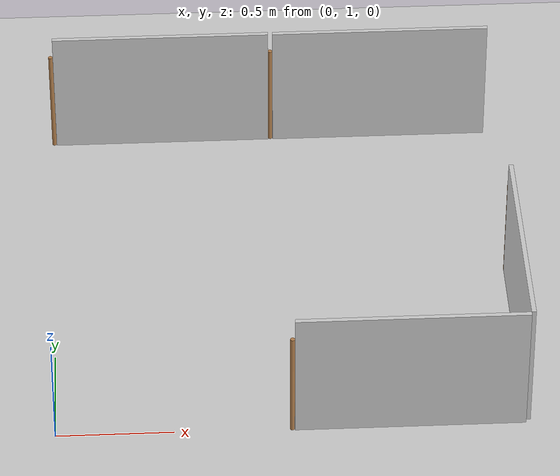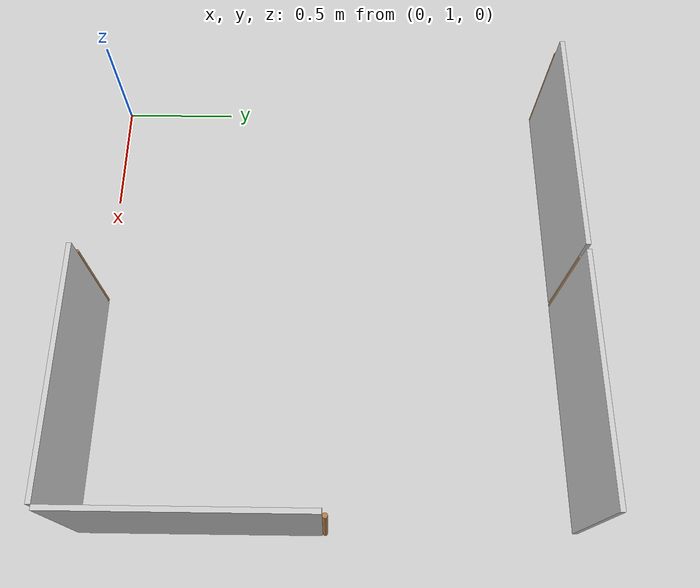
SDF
<sdf version="1.7">
 <world name="default">
  <model name="ground_plane">
   <static>true</static>
   <link name="link">
    <collision name="collision">
     <geometry><plane><normal>0 0 1</normal><size>1 1</size></plane></geometry>
    </collision>
    <visual name="visual">
     <geometry><plane><normal>0 0 1</normal><size>100 100</size></plane></geometry>
     <material>
      <ambient>0.8 0.8 0.8 1</ambient>
      <diffuse>0.8 0.8 0.8 1</diffuse>
      <specular>0.8 0.8 0.8 1</specular>
     </material>
    </visual>
    <inertial>
     <mass>1</mass>
     <inertia><ixx>1</ixx><ixy>0</ixy><ixz>0</ixz><iyy>1</iyy><iyz>0</iyz><izz>1</izz></inertia>
    </inertial>
   </link>
  </model>
  <model name="maze_1_6x5_clone_2_clone_clone_5_clone">
   <frame name="plywood_panel_0_0_b::__model__" attached_to="plywood_panel_0_0_b::main">
    <pose relative_to="__model__">0 0 0 0 -0 1.571</pose>
   </frame>
   <static>true</static>
   <link name="plywood_panel_0_0_b::main">
    <pose relative_to="plywood_panel_0_0_b::__model__">0 0 0 0 -0 0</pose>
    <collision name="collision">
     <pose>0 -0.5 0.3 -1.571 -0 -1.571</pose>
     <geometry><box><size>0.98 0.6 0.02</size></box></geometry>
    </collision>
    <visual name="visual">
     <pose>0.01 -0.01 0 3.14159 -1.57059 3.14159</pose>
     <geometry>
      <mesh>
       <scale>1 1 1</scale>
       <uri>/home/mayank/cognipilot/cranium/src/dream_world/models/plywood_panel/meshes/plywood.dae</uri>
      </mesh>
     </geometry>
    </visual>
   </link>
   <frame name="wooden_joint_0_0_b::__model__" attached_to="wooden_joint_0_0_b::link_0">
    <pose relative_to="__model__">0 0 0 0 -0 0</pose>
   </frame>
   <link name="wooden_joint_0_0_b::link_0">
    <pose relative_to="wooden_joint_0_0_b::__model__">0 0 0.25 0 -0 0</pose>
    <inertial>
     <mass>0.00215981</mass>
     <inertia>
      <ixx>0.00018028</ixx>
      <ixy>0</ixy>
      <ixz>0</ixz>
      <iyy>0.00018028</iyy>
      <iyz>0</iyz>
      <izz>5.8e-07</izz>
     </inertia>
    </inertial>
    <visual name="visual">
     <geometry><cylinder><radius>0.01</radius><length>0.5</length></cylinder></geometry>
     <material>
      <lighting>1</lighting>
      <script><uri>file://media/materials/scripts/gazebo.material</uri><name>Gazebo/Wood</name></script>
      <shader type="pixel"><normal_map>__default__</normal_map></shader>
      <ambient>0.3 0.3 0.3 1</ambient>
      <diffuse>0.7 0.7 0.7 1</diffuse>
      <specular>0.01 0.01 0.01 1</specular>
      <emissive>0 0 0 1</emissive>
     </material>
    </visual>
    <collision name="collision">
     <geometry><cylinder><radius>0.01</radius><length>0.5</length></cylinder></geometry>
     <surface>
      <friction>
       <ode><mu>1</mu><mu2>1</mu2><fdir1>0 0 0</fdir1><slip1>0</slip1><slip2>0</slip2></ode>
       <torsional>
        <coefficient>1</coefficient>
        <patch_radius>0</patch_radius>
        <surface_radius>0</surface_radius>
        <use_patch_radius>1</use_patch_radius>
        <ode><slip>0</slip></ode>
       </torsional>
      </friction>
      <bounce><restitution_coefficient>0</restitution_coefficient><threshold>1e+06</threshold></bounce>
      <contact>
       <collide_without_contact>0</collide_without_contact>
       <collide_without_contact_bitmask>1</collide_without_contact_bitmask>
       <collide_bitmask>1</collide_bitmask>
       <ode>
        <soft_cfm>0</soft_cfm>
        <soft_erp>0.2</soft_erp>
        <kp>1e+13</kp>
        <kd>1</kd>
        <max_vel>0.01</max_vel>
        <min_depth>0</min_depth>
       </ode>
       <bullet>
        <split_impulse>1</split_impulse>
        <split_impulse_penetration_threshold>-0.01</split_impulse_penetration_threshold>
        <soft_cfm>0</soft_cfm>
        <soft_erp>0.2</soft_erp>
        <kp>1e+13</kp>
        <kd>1</kd>
       </bullet>
      </contact>
     </surface>
    </collision>
   </link>
   <static>true</static>
   <pose>1 1 0 0 0 -4e-06</pose>
  </model>
  <model name="maze_1_6x5_clone_2_clone_clone_clone_2_clone_3">
   <frame name="plywood_panel_0_0_b::__model__" attached_to="plywood_panel_0_0_b::main">
    <pose relative_to="__model__">0 0 0 0 -0 1.571</pose>
   </frame>
   <static>true</static>
   <link name="plywood_panel_0_0_b::main">
    <pose relative_to="plywood_panel_0_0_b::__model__">0 0 0 0 -0 0</pose>
    <collision name="collision">
     <pose>0 -0.5 0.3 -1.571 -0 -1.571</pose>
     <geometry><box><size>0.98 0.6 0.02</size></box></geometry>
    </collision>
    <visual name="visual">
     <pose>0.01 -0.01 0 3.14159 -1.57059 3.14159</pose>
     <geometry>
      <mesh>
       <scale>1 1 1</scale>
       <uri>/home/mayank/cognipilot/cranium/src/dream_world/models/plywood_panel/meshes/plywood.dae</uri>
      </mesh>
     </geometry>
    </visual>
   </link>
   <frame name="wooden_joint_0_0_b::__model__" attached_to="wooden_joint_0_0_b::link_0">
    <pose relative_to="__model__">0 0 0 0 -0 0</pose>
   </frame>
   <link name="wooden_joint_0_0_b::link_0">
    <pose relative_to="wooden_joint_0_0_b::__model__">0 0 0.25 0 -0 0</pose>
    <inertial>
     <mass>0.00215981</mass>
     <inertia>
      <ixx>0.00018028</ixx>
      <ixy>0</ixy>
      <ixz>0</ixz>
      <iyy>0.00018028</iyy>
      <iyz>0</iyz>
      <izz>5.8e-07</izz>
     </inertia>
    </inertial>
    <visual name="visual">
     <geometry><cylinder><radius>0.01</radius><length>0.5</length></cylinder></geometry>
     <material>
      <lighting>1</lighting>
      <script><uri>file://media/materials/scripts/gazebo.material</uri><name>Gazebo/Wood</name></script>
      <shader type="pixel"><normal_map>__default__</normal_map></shader>
      <ambient>0.3 0.3 0.3 1</ambient>
      <diffuse>0.7 0.7 0.7 1</diffuse>
      <specular>0.01 0.01 0.01 1</specular>
      <emissive>0 0 0 1</emissive>
     </material>
    </visual>
    <collision name="collision">
     <geometry><cylinder><radius>0.01</radius><length>0.5</length></cylinder></geometry>
     <surface>
      <friction>
       <ode><mu>1</mu><mu2>1</mu2><fdir1>0 0 0</fdir1><slip1>0</slip1><slip2>0</slip2></ode>
       <torsional>
        <coefficient>1</coefficient>
        <patch_radius>0</patch_radius>
        <surface_radius>0</surface_radius>
        <use_patch_radius>1</use_patch_radius>
        <ode><slip>0</slip></ode>
       </torsional>
      </friction>
      <bounce><restitution_coefficient>0</restitution_coefficient><threshold>1e+06</threshold></bounce>
      <contact>
       <collide_without_contact>0</collide_without_contact>
       <collide_without_contact_bitmask>1</collide_without_contact_bitmask>
       <collide_bitmask>1</collide_bitmask>
       <ode>
        <soft_cfm>0</soft_cfm>
        <soft_erp>0.2</soft_erp>
        <kp>1e+13</kp>
        <kd>1</kd>
        <max_vel>0.01</max_vel>
        <min_depth>0</min_depth>
       </ode>
       <bullet>
        <split_impulse>1</split_impulse>
        <split_impulse_penetration_threshold>-0.01</split_impulse_penetration_threshold>
        <soft_cfm>0</soft_cfm>
        <soft_erp>0.2</soft_erp>
        <kp>1e+13</kp>
        <kd>1</kd>
       </bullet>
      </contact>
     </surface>
    </collision>
   </link>
   <static>true</static>
   <pose>0 3 0 0 0 -4e-06</pose>
  </model>
  <model name="maze_1_6x5_clone_2_clone_clone_clone_2_clone_4">
   <frame name="plywood_panel_0_0_b::__model__" attached_to="plywood_panel_0_0_b::main">
    <pose relative_to="__model__">0 0 0 0 -0 1.571</pose>
   </frame>
   <static>true</static>
   <link name="plywood_panel_0_0_b::main">
    <pose relative_to="plywood_panel_0_0_b::__model__">0 0 0 0 -0 0</pose>
    <collision name="collision">
     <pose>0 -0.5 0.3 -1.571 -0 -1.571</pose>
     <geometry><box><size>0.98 0.6 0.02</size></box></geometry>
    </collision>
    <visual name="visual">
     <pose>0.01 -0.01 0 3.14159 -1.57059 3.14159</pose>
     <geometry>
      <mesh>
       <scale>1 1 1</scale>
       <uri>/home/mayank/cognipilot/cranium/src/dream_world/models/plywood_panel/meshes/plywood.dae</uri>
      </mesh>
     </geometry>
    </visual>
   </link>
   <frame name="wooden_joint_0_0_b::__model__" attached_to="wooden_joint_0_0_b::link_0">
    <pose relative_to="__model__">0 0 0 0 -0 0</pose>
   </frame>
   <link name="wooden_joint_0_0_b::link_0">
    <pose relative_to="wooden_joint_0_0_b::__model__">0 0 0.25 0 -0 0</pose>
    <inertial>
     <mass>0.00215981</mass>
     <inertia>
      <ixx>0.00018028</ixx>
      <ixy>0</ixy>
      <ixz>0</ixz>
      <iyy>0.00018028</iyy>
      <iyz>0</iyz>
      <izz>5.8e-07</izz>
     </inertia>
    </inertial>
    <visual name="visual">
     <geometry><cylinder><radius>0.01</radius><length>0.5</length></cylinder></geometry>
     <material>
      <lighting>1</lighting>
      <script><uri>file://media/materials/scripts/gazebo.material</uri><name>Gazebo/Wood</name></script>
      <shader type="pixel"><normal_map>__default__</normal_map></shader>
      <ambient>0.3 0.3 0.3 1</ambient>
      <diffuse>0.7 0.7 0.7 1</diffuse>
      <specular>0.01 0.01 0.01 1</specular>
      <emissive>0 0 0 1</emissive>
     </material>
    </visual>
    <collision name="collision">
     <geometry><cylinder><radius>0.01</radius><length>0.5</length></cylinder></geometry>
     <surface>
      <friction>
       <ode><mu>1</mu><mu2>1</mu2><fdir1>0 0 0</fdir1><slip1>0</slip1><slip2>0</slip2></ode>
       <torsional>
        <coefficient>1</coefficient>
        <patch_radius>0</patch_radius>
        <surface_radius>0</surface_radius>
        <use_patch_radius>1</use_patch_radius>
        <ode><slip>0</slip></ode>
       </torsional>
      </friction>
      <bounce><restitution_coefficient>0</restitution_coefficient><threshold>1e+06</threshold></bounce>
      <contact>
       <collide_without_contact>0</collide_without_contact>
       <collide_without_contact_bitmask>1</collide_without_contact_bitmask>
       <collide_bitmask>1</collide_bitmask>
       <ode>
        <soft_cfm>0</soft_cfm>
        <soft_erp>0.2</soft_erp>
        <kp>1e+13</kp>
        <kd>1</kd>
        <max_vel>0.01</max_vel>
        <min_depth>0</min_depth>
       </ode>
       <bullet>
        <split_impulse>1</split_impulse>
        <split_impulse_penetration_threshold>-0.01</split_impulse_penetration_threshold>
        <soft_cfm>0</soft_cfm>
        <soft_erp>0.2</soft_erp>
        <kp>1e+13</kp>
        <kd>1</kd>
       </bullet>
      </contact>
     </surface>
    </collision>
   </link>
   <static>true</static>
   <pose>1 3 0 0 0 -4e-06</pose>
  </model>
  <model name="maze_1_6x5_clone_clone_clone_2_clone_0">
   <frame name="plywood_panel_0_0_b::__model__" attached_to="plywood_panel_0_0_b::main">
    <pose relative_to="__model__">0 0 0 0 -0 1.571</pose>
   </frame>
   <static>true</static>
   <link name="plywood_panel_0_0_b::main">
    <pose relative_to="plywood_panel_0_0_b::__model__">0 0 0 0 -0 0</pose>
    <collision name="collision">
     <pose>0 -0.5 0.3 -1.571 -0 -1.571</pose>
     <geometry><box><size>0.98 0.6 0.02</size></box></geometry>
    </collision>
    <visual name="visual">
     <pose>0.01 -0.01 0 3.14159 -1.57059 3.14159</pose>
     <geometry>
      <mesh>
       <scale>1 1 1</scale>
       <uri>/home/mayank/cognipilot/cranium/src/dream_world/models/plywood_panel/meshes/plywood.dae</uri>
      </mesh>
     </geometry>
    </visual>
   </link>
   <frame name="wooden_joint_0_0_b::__model__" attached_to="wooden_joint_0_0_b::link_0">
    <pose relative_to="__model__">0 0 0 0 -0 0</pose>
   </frame>
   <link name="wooden_joint_0_0_b::link_0">
    <pose relative_to="wooden_joint_0_0_b::__model__">0 0 0.25 0 -0 0</pose>
    <inertial>
     <mass>0.00215981</mass>
     <inertia>
      <ixx>0.00018028</ixx>
      <ixy>0</ixy>
      <ixz>0</ixz>
      <iyy>0.00018028</iyy>
      <iyz>0</iyz>
      <izz>5.8e-07</izz>
     </inertia>
    </inertial>
    <visual name="visual">
     <geometry><cylinder><radius>0.01</radius><length>0.5</length></cylinder></geometry>
     <material>
      <lighting>1</lighting>
      <script><uri>file://media/materials/scripts/gazebo.material</uri><name>Gazebo/Wood</name></script>
      <shader type="pixel"><normal_map>__default__</normal_map></shader>
      <ambient>0.3 0.3 0.3 1</ambient>
      <diffuse>0.7 0.7 0.7 1</diffuse>
      <specular>0.01 0.01 0.01 1</specular>
      <emissive>0 0 0 1</emissive>
     </material>
    </visual>
    <collision name="collision">
     <geometry><cylinder><radius>0.01</radius><length>0.5</length></cylinder></geometry>
     <surface>
      <friction>
       <ode><mu>1</mu><mu2>1</mu2><fdir1>0 0 0</fdir1><slip1>0</slip1><slip2>0</slip2></ode>
       <torsional>
        <coefficient>1</coefficient>
        <patch_radius>0</patch_radius>
        <surface_radius>0</surface_radius>
        <use_patch_radius>1</use_patch_radius>
        <ode><slip>0</slip></ode>
       </torsional>
      </friction>
      <bounce><restitution_coefficient>0</restitution_coefficient><threshold>1e+06</threshold></bounce>
      <contact>
       <collide_without_contact>0</collide_without_contact>
       <collide_without_contact_bitmask>1</collide_without_contact_bitmask>
       <collide_bitmask>1</collide_bitmask>
       <ode>
        <soft_cfm>0</soft_cfm>
        <soft_erp>0.2</soft_erp>
        <kp>1e+13</kp>
        <kd>1</kd>
        <max_vel>0.01</max_vel>
        <min_depth>0</min_depth>
       </ode>
       <bullet>
        <split_impulse>1</split_impulse>
        <split_impulse_penetration_threshold>-0.01</split_impulse_penetration_threshold>
        <soft_cfm>0</soft_cfm>
        <soft_erp>0.2</soft_erp>
        <kp>1e+13</kp>
        <kd>1</kd>
       </bullet>
      </contact>
     </surface>
    </collision>
   </link>
   <static>true</static>
   <pose>2 2 0 0 0 -1.5708</pose>
  </model>
 </world>
</sdf>
